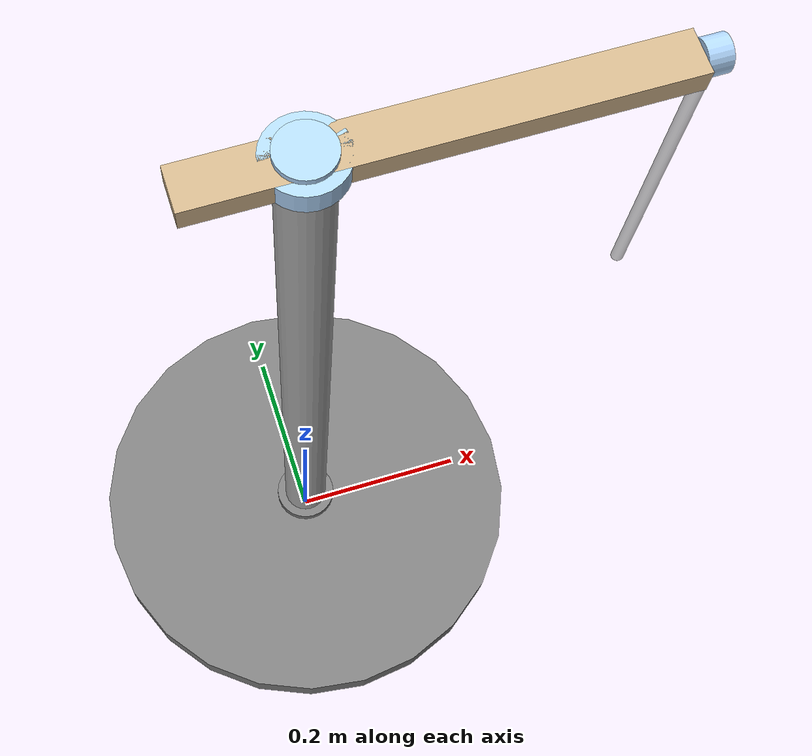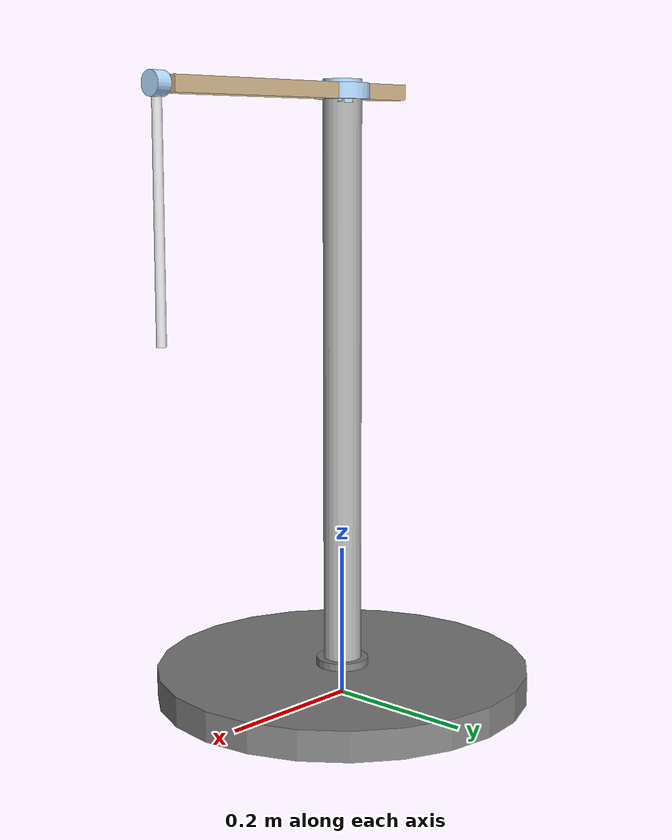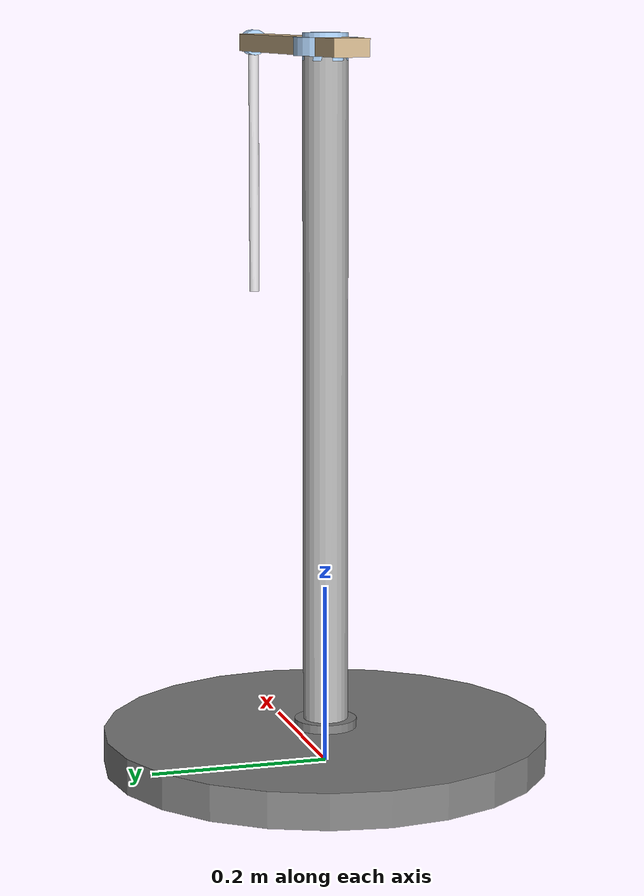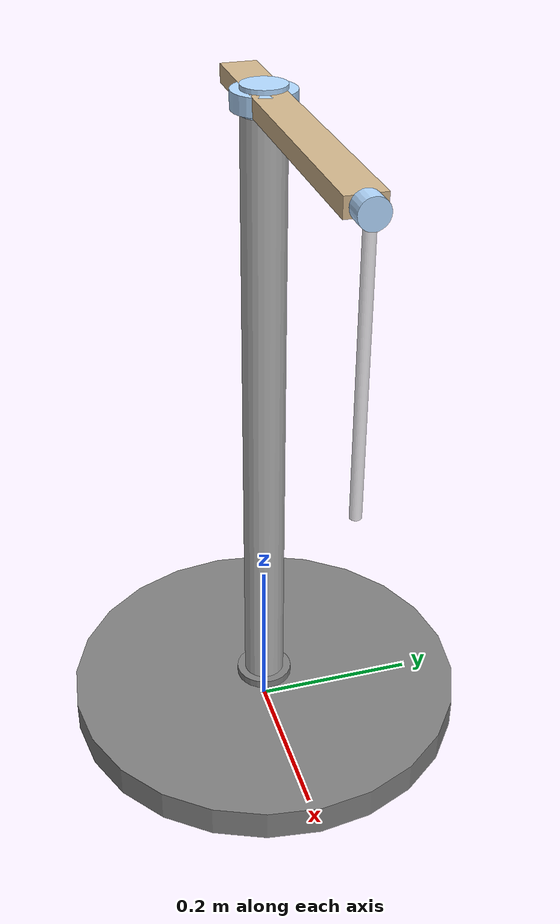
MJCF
<?xml version="1.0" encoding="utf-8"?>

<mujoco model="inverted_pendulum">
  <compiler eulerseq="XYZ" fitaabb="true" angle="radian" meshdir="robot/parts/meshes" autolimits="true"/>
  <option timestep="0.001" gravity="0 0 -9.81"/>
  <worldbody>
    <!-- Cylindrical base -->
    <body name="base" pos="0 0 0">
      <geom name="base_geom" type="cylinder" size="0.25 0.02" pos="0 0 0.02" rgba="0.5 0.5 0.5 1" density="7850"/>
      <!-- Connector between base and vertical rod -->
      <geom name="base_connector" type="cylinder" size="0.035 0.01" pos="0 0 0.04" rgba="0.5 0.5 0.5 1" density="7850"/>
      <!-- Vertical Rod -->
      <body name="vertical_rod" pos="0 0 0.0">
        <geom name="rod" type="cylinder" size="0.025 0.4" pos="0 0 0.4" rgba="0.7 0.7 0.7 1" density="7850"/>
        <!-- Top connector of vertical rod -->
        <geom name="top_connector" type="cylinder" size="0.035 0.01" pos="0 0 0.8" rgba="0.7 0.85 1.0 1" density="7850"/>
        <!-- Horizontal Rod -->
        <body name="horizontal_rod" pos="0 0 0.8">
          <joint name="hinge1" type="hinge" axis="0 0 1" damping="0.05" armature="0.1"/>
          <!-- Rotation joint connector -->
          <geom name="rotation_joint" type="cylinder" size="0.025 0.015" pos="0 0 0" rgba="0.7 0.85 1.0 1" density="7850"/>
          <!-- Wooden horizontal beam -->
          <geom type="box" size="0.2 0.02 0.01" pos="0.1 0 0" rgba="0.82 0.71 0.55 1" density="600"/>
          <!-- Pendulum -->
          <body name="metal_strip" pos="0.3 0 0" euler="3.141592625 0 0">
            <!-- Pendulum axis connector -->
            <geom name="pendulum_joint" type="cylinder" size="0.015 0.01" pos="0.01 0 0" euler="0 1.5708 0" rgba="0.7 0.85 1.0 1" density="7850"/>
            <joint name="hinge2" type="hinge" axis="1 0 0" damping="0.01" frictionloss="0.01" ref="3.141592625" range="-0.5 0.5"/>
            <!-- Pendulum rod -->
            <geom name="strip" type="cylinder" size="0.006 0.15" pos="0.01 0 0.15" rgba="0.9 0.9 0.9 0.8" density="7850"/>
          </body>
        </body>
      </body>
    </body>
  </worldbody>
  <actuator>
    <motor name="center_motor" joint="hinge1" gear="1" ctrlrange="-10000 10000"/>
  </actuator>
  <sensor>
    <jointpos name="jointpos_hinge1" joint="hinge1" noise="0.01"/>
    <jointvel name="jointvel_hinge1" joint="hinge1" noise="0.05"/>
    <jointpos name="jointpos_hinge2" joint="hinge2" noise="0.01"/>
    <jointvel name="jointvel_hinge2" joint="hinge2" noise="0.05"/>
  </sensor>
</mujoco>
